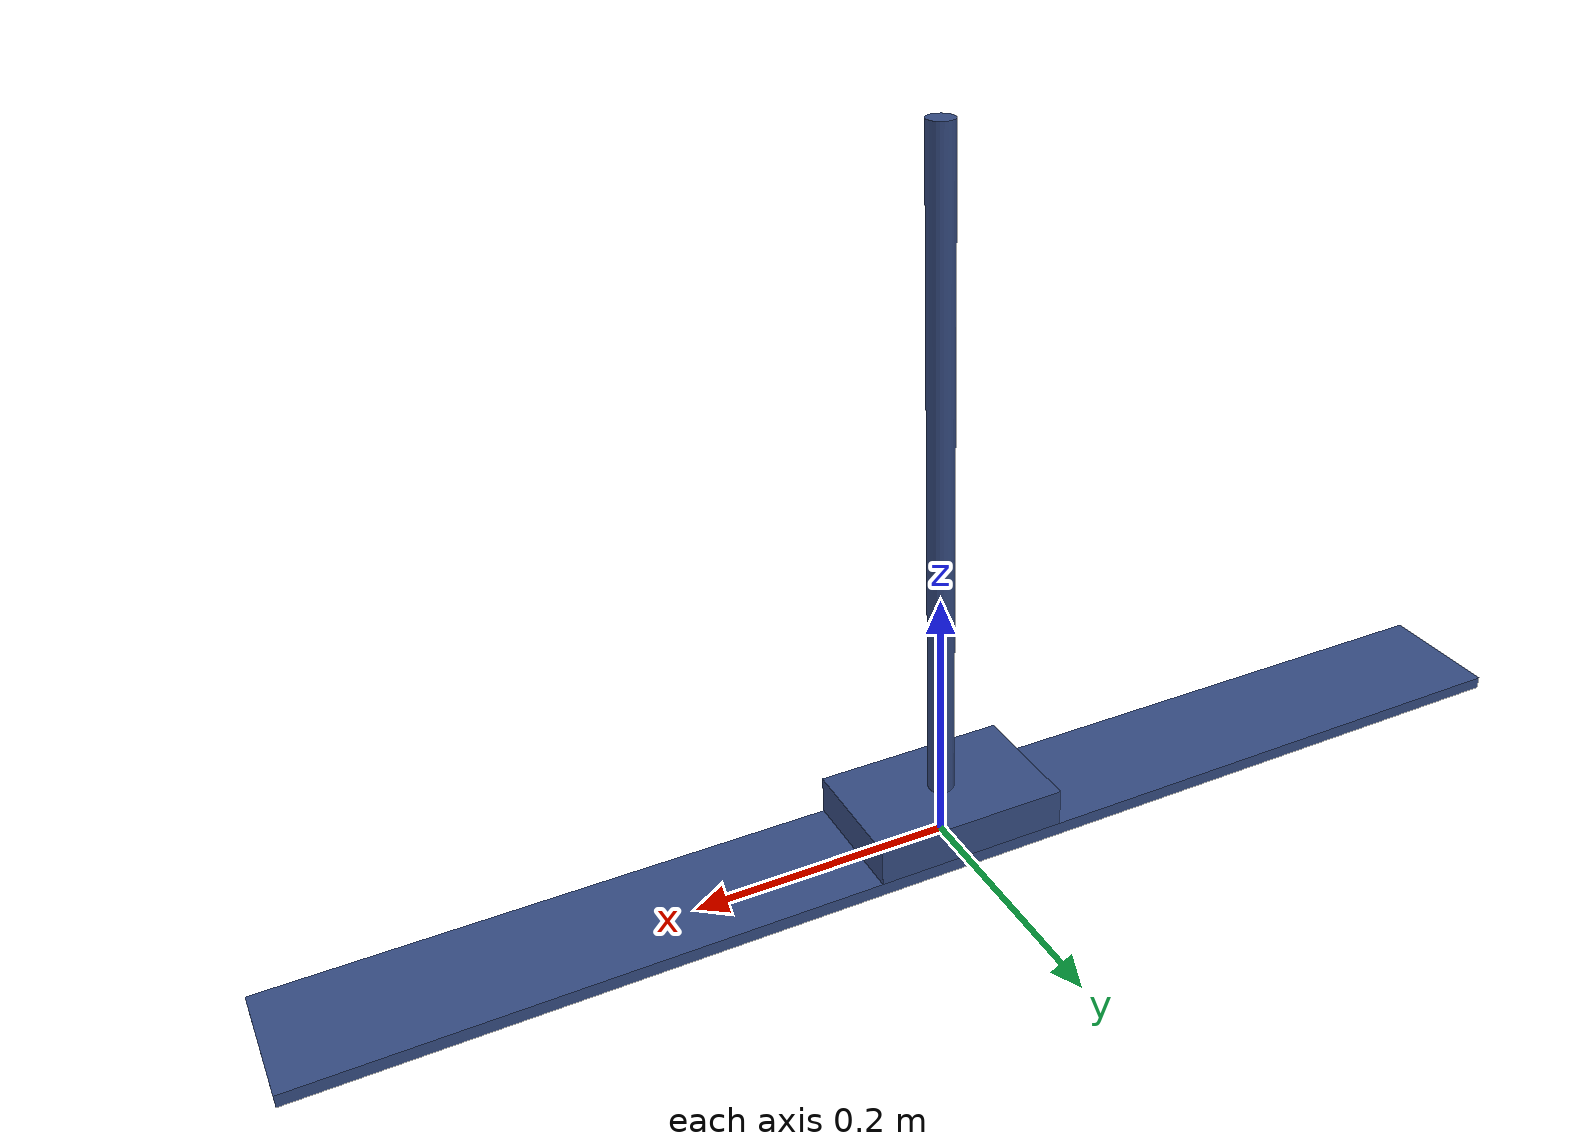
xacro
<?xml version="1.0"?>
<robot name="inverted_pendulum" xmlns:xacro="http://www.ros.org/wiki/xacro">

    <xacro:include filename="inverted_pendulum.common.xacro" />
    <xacro:include filename="inverted_pendulum.model.xacro" />
    <xacro:include filename="inverted_pendulum.gazebo.xacro" />

</robot>

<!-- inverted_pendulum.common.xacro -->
<robot xmlns:xacro="http://www.ros.org/wiki/xacro">

    <material name="metalgrey">
        <color rgba="0.210 0.3 0.52 1" />
    </material>

    <xacro:macro name="box_inertia" params="m x y z o_xyz o_rpy">
        <inertial>
            <mass value="${m}" />
            <origin xyz="${o_xyz}" rpy="${o_rpy}" />
            <inertia ixx="${(m/12) * (y*y + z*z)}" ixy="0" ixz="0"
                     iyy="${(m/12) * (x*x + z*z)}" iyz="0"
                     izz="${(m/12) * (x*x + y*y)}" />
        </inertial>
    </xacro:macro>

    <xacro:macro name="cylinder_inertia" params="m r l o_xyz o_rpy">
        <inertial>
            <mass value="${m}" />
            <origin xyz="${o_xyz}" rpy="${o_rpy}" />
            <inertia ixx="${(m/12) * (3*r*r + l*l)}" ixy="0" ixz="0"
                     iyy="${(m/12) * (3*r*r + l*l)}" iyz="0"
                     izz="${(m/2) * (r*r)}" />
        </inertial>
    </xacro:macro>

</robot>

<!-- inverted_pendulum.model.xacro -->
<robot xmlns:xacro="http://www.ros.org/wiki/xacro">

    <xacro:property name="rail_length" value="1.0" />
    <xacro:property name="rail_width" value="0.1" />
    <xacro:property name="rail_height" value="0.01" />
    <xacro:property name="cart_length" value="0.15" />
    <xacro:property name="cart_width" value="0.1" />
    <xacro:property name="cart_height" value="0.03" />
    <xacro:property name="pendulum_radius" value="0.01" />
    <xacro:property name="pendulum_length" value="0.5" />

    <link name="world" />

    <link name="rail_link">
        <visual>
            <geometry>
                <box size="${rail_length} ${rail_width} ${rail_height}" />
            </geometry>
            <origin xyz="0 0 ${rail_height / 2.0}" rpy="0 0 0" />
            <material name="metalgrey" />
        </visual>
        <collision>
            <geometry>
                <box size="${rail_length} ${rail_width} ${rail_height}" />
            </geometry>
            <origin xyz="0 0 ${rail_height / 2.0}" rpy="0 0 0" />
        </collision>
        <xacro:box_inertia m="5.0" x="${rail_length}" y="${rail_width}" z="${rail_height}"
                           o_xyz="0 0 ${rail_height / 2.0}" o_rpy="0 0 0" />
    </link>

    <link name="cart_link">
        <visual>
            <geometry>
                <box size="${cart_length} ${cart_width} ${cart_height}" />
            </geometry>
            <origin xyz="0 0 ${cart_height / 2.0}" rpy="0 0 0" />
            <material name="metalgrey" />
        </visual>
        <collision>
            <geometry>
                <box size="${cart_length} ${cart_width} ${cart_height}" />
            </geometry>
            <origin xyz="0 0 ${cart_height / 2.0}" rpy="0 0 0" />
        </collision>
        <xacro:box_inertia m="3.0" x="${cart_length}" y="${cart_width}" z="${cart_height}"
                           o_xyz="0 0 ${cart_height / 2.0}" o_rpy="0 0 0" />
    </link>

    <link name="pendulum_link">
        <visual>
            <geometry>
                <cylinder radius="${pendulum_radius}" length="${pendulum_length}" />
            </geometry>
            <origin xyz="0 0 ${pendulum_length / 2.0}" rpy="0 0 0" />
            <material name="metalgrey" />
        </visual>
        <collision>
            <geometry>
                <cylinder radius="${pendulum_radius}" length="${pendulum_length}" />
            </geometry>
            <origin xyz="0 0 ${(pendulum_length / 2.0) + 0.03}" rpy="0 0 0" />
        </collision>
        <xacro:cylinder_inertia m="1.0" r="${pendulum_radius}" l="${pendulum_length}"
                                    o_xyz="0 0 ${pendulum_length / 2.0}" o_rpy="0 0 0" />
    </link>

    <joint name="world_rail_joint" type="fixed">
        <parent link="world" />
        <child link="rail_link" />
        <origin xyz="0 0 0" rpy="0 0 0" />
    </joint>

    <joint name="cart_rail_joint" type="prismatic">
        <parent link="rail_link" />
        <child link="cart_link" />
        <origin xyz="0 0 0.01" rpy="0 0 0" />
        <axis xyz="1 0 0" />
        <limit lower="-0.5" upper="0.5" effort="100.0" velocity="2.0"/>
    </joint>

    <joint name="pendulum_cart_joint" type="revolute">
        <parent link="cart_link" />
        <child link="pendulum_link" />
        <origin xyz="0 0 ${cart_height}" rpy="0 0 0" />
        <axis xyz="0 1 0" />
        <limit lower="-1.5" upper="1.5" effort="100.0" velocity="2.0"/>
    </joint>

</robot>
